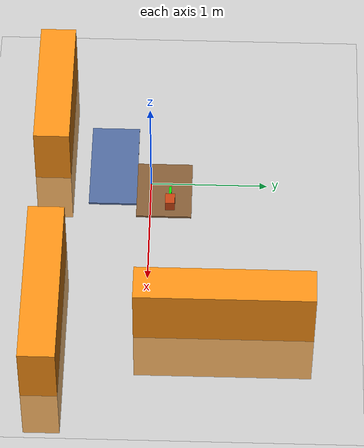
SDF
<?xml version="1.0"?>
<sdf version="1.6">
  <world name="pick_transport">
    <plugin name="gazebo_ros_state" filename="libgazebo_ros_state.so">
      <ros><namespace>/gazebo</namespace></ros>
      <update_rate>50.0</update_rate>
    </plugin>
    <gui fullscreen="false">
      <camera name="go2_piper_overview">
        <pose>-1.5 -2.0 1.4 0 0.52 0.78</pose>
        <view_controller>orbit</view_controller>
      </camera>
    </gui>
    <physics name="ode" type="ode">
      <max_step_size>0.005</max_step_size>
      <real_time_update_rate>200</real_time_update_rate>
      <ode><solver><type>quick</type><iters>100</iters><sor>1.0</sor></solver></ode>
    </physics>
    <gravity>0 0 -9.81</gravity>
    <include><uri>model://sun</uri></include>
    <include><uri>model://ground_plane</uri></include>
    <model name="pickup_table">
      <static>true</static>
      <pose>0.45 0.13 0.496 0 0 0</pose>
      <link name="link">
        <collision name="collision"><geometry><box><size>0.55 0.46 0.02</size></box></geometry></collision>
        <visual name="visual"><geometry><box><size>0.55 0.46 0.02</size></box></geometry>
          <material><ambient>0.35 0.25 0.15 1</ambient><diffuse>0.5 0.35 0.2 1</diffuse></material></visual>
      </link>
    </model>
    <model name="drop_table">
      <static>true</static>
      <pose>0.20 -0.30 0.496 0 0 0</pose>
      <link name="link">
        <collision name="collision"><geometry><box><size>0.80 0.40 0.02</size></box></geometry></collision>
        <visual name="visual"><geometry><box><size>0.80 0.40 0.02</size></box></geometry>
          <material><ambient>0.2 0.25 0.35 1</ambient><diffuse>0.3 0.4 0.6 1</diffuse></material></visual>
      </link>
    </model>
    <model name="target_box">
      <static>false</static>
      <pose>0.61 0.18 0.556 0 0 0</pose>
      <link name="body">
        <inertial>
          <mass>0.20</mass>
          <inertia>
            <ixx>0.0001093</ixx><iyy>0.0001333</iyy><izz>0.0001093</izz>
          </inertia>
        </inertial>
        <collision name="body_collision">
          <surface>
            <friction><ode><mu>1.2</mu><mu2>1.2</mu2></ode></friction>
            <contact><ode><kp>300000</kp><kd>30</kd><max_vel>0.005</max_vel><min_depth>0.001</min_depth></ode></contact>
          </surface>
          <geometry><box><size>0.10 0.08 0.10</size></box></geometry>
        </collision>
        <visual name="body_visual">
          <geometry><box><size>0.10 0.08 0.10</size></box></geometry>
          <material><ambient>0.55 0.18 0.05 1</ambient><diffuse>0.75 0.25 0.06 1</diffuse></material>
        </visual>
      </link>
      <link name="handle">
        <pose>-0.130 0 0 0 0 0</pose>
        <inertial>
          <mass>0.01</mass>
          <inertia><ixx>0.000004</ixx><iyy>0.000004</iyy><izz>0.000001</izz></inertia>
        </inertial>
        <collision name="grip_collision">
          <surface>
            <friction><ode><mu>15.0</mu><mu2>15.0</mu2><slip1>0.0</slip1><slip2>0.0</slip2></ode></friction>
            <contact><ode><kp>300000</kp><kd>30</kd><max_vel>0.005</max_vel><min_depth>0.001</min_depth></ode></contact>
          </surface>
          <geometry><box><size>0.018 0.018 0.060</size></box></geometry>
        </collision>
        <collision name="upper_mount_collision"><pose>0.040 0 0.030 0 0 0</pose><geometry><box><size>0.080 0.018 0.018</size></box></geometry></collision>
        <collision name="lower_mount_collision"><pose>0.040 0 -0.030 0 0 0</pose><geometry><box><size>0.080 0.018 0.018</size></box></geometry></collision>
        <visual name="grip_visual">
          <geometry><box><size>0.018 0.018 0.060</size></box></geometry>
          <material><ambient>0 1 0 1</ambient><diffuse>0 1 0 1</diffuse></material>
        </visual>
        <visual name="upper_mount_visual"><pose>0.040 0 0.030 0 0 0</pose><geometry><box><size>0.080 0.018 0.018</size></box></geometry><material><ambient>0 1 0 1</ambient><diffuse>0 1 0 1</diffuse></material></visual>
        <visual name="lower_mount_visual"><pose>0.040 0 -0.030 0 0 0</pose><geometry><box><size>0.080 0.018 0.018</size></box></geometry><material><ambient>0 1 0 1</ambient><diffuse>0 1 0 1</diffuse></material></visual>
      </link>
      <joint name="body_to_handle" type="fixed"><parent>body</parent><child>handle</child></joint>
    </model>
    <!-- Obstacles copied from the course playground jersey_barrier geometry. -->
    <model name="course_jersey_barrier_01">
      <static>true</static>
      <pose>1.45 -0.85 0 0 0 0</pose>
      <link name="link">
        <collision name="upright"><pose>0 0 0.5715 0 0 0</pose><geometry><box><size>1.50 0.3063 1.143</size></box></geometry></collision>
        <collision name="base"><pose>0 0 0.032258 0 0 0</pose><geometry><box><size>1.50 0.8107 0.064516</size></box></geometry></collision>
        <collision name="base2"><pose>0 0 0.1 0 0 0</pose><geometry><box><size>1.50 0.65 0.1</size></box></geometry></collision>
        <collision name="base3"><pose>0 0 0.2 0 0 0</pose><geometry><box><size>1.50 0.5 0.1</size></box></geometry></collision>
        <visual name="visual"><geometry><box><size>1.50 0.3063 1.143</size></box></geometry><material><ambient>0.9 0.45 0.05 1</ambient><diffuse>0.95 0.55 0.08 1</diffuse></material></visual>
      </link>
    </model>
    <model name="course_jersey_barrier_02">
      <static>true</static>
      <pose>1.45 0.65 0 0 0 1.5708</pose>
      <link name="link">
        <collision name="upright"><pose>0 0 0.5715 0 0 0</pose><geometry><box><size>1.50 0.3063 1.143</size></box></geometry></collision>
        <collision name="base"><pose>0 0 0.032258 0 0 0</pose><geometry><box><size>1.50 0.8107 0.064516</size></box></geometry></collision>
        <collision name="base2"><pose>0 0 0.1 0 0 0</pose><geometry><box><size>1.50 0.65 0.1</size></box></geometry></collision>
        <collision name="base3"><pose>0 0 0.2 0 0 0</pose><geometry><box><size>1.50 0.5 0.1</size></box></geometry></collision>
        <visual name="visual"><geometry><box><size>1.50 0.3063 1.143</size></box></geometry><material><ambient>0.9 0.45 0.05 1</ambient><diffuse>0.95 0.55 0.08 1</diffuse></material></visual>
      </link>
    </model>
    <model name="course_jersey_barrier_03">
      <static>true</static>
      <pose>-0.65 -0.85 0 0 0 0</pose>
      <link name="link">
        <collision name="upright"><pose>0 0 0.5715 0 0 0</pose><geometry><box><size>1.20 0.3063 1.143</size></box></geometry></collision>
        <collision name="base"><pose>0 0 0.032258 0 0 0</pose><geometry><box><size>1.20 0.8107 0.064516</size></box></geometry></collision>
        <collision name="base2"><pose>0 0 0.1 0 0 0</pose><geometry><box><size>1.20 0.65 0.1</size></box></geometry></collision>
        <collision name="base3"><pose>0 0 0.2 0 0 0</pose><geometry><box><size>1.20 0.5 0.1</size></box></geometry></collision>
        <visual name="visual"><geometry><box><size>1.20 0.3063 1.143</size></box></geometry><material><ambient>0.9 0.45 0.05 1</ambient><diffuse>0.95 0.55 0.08 1</diffuse></material></visual>
      </link>
    </model>
  </world>
</sdf>
